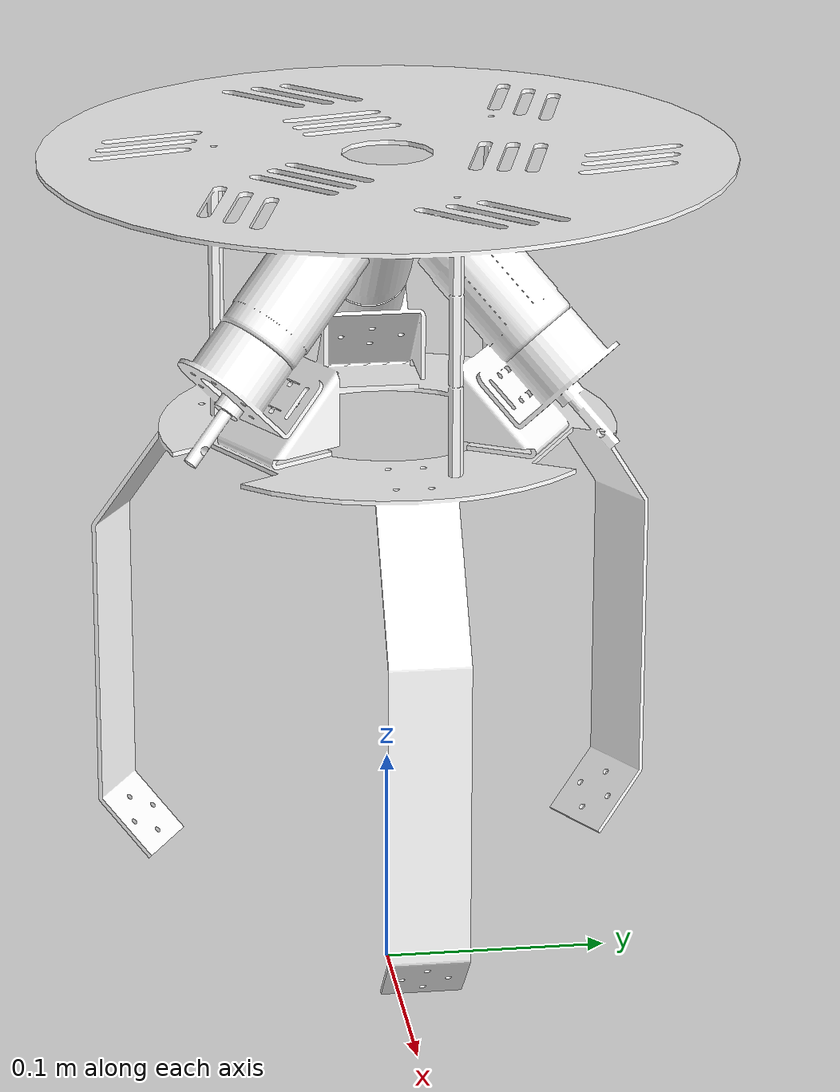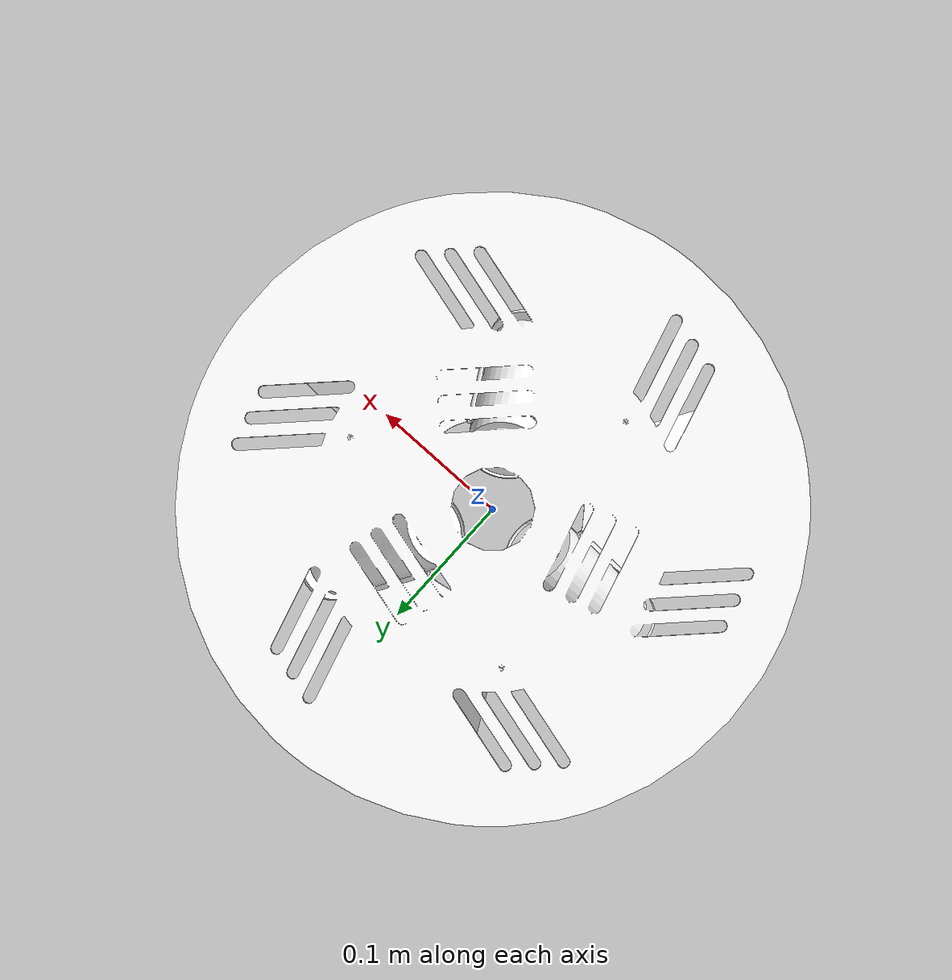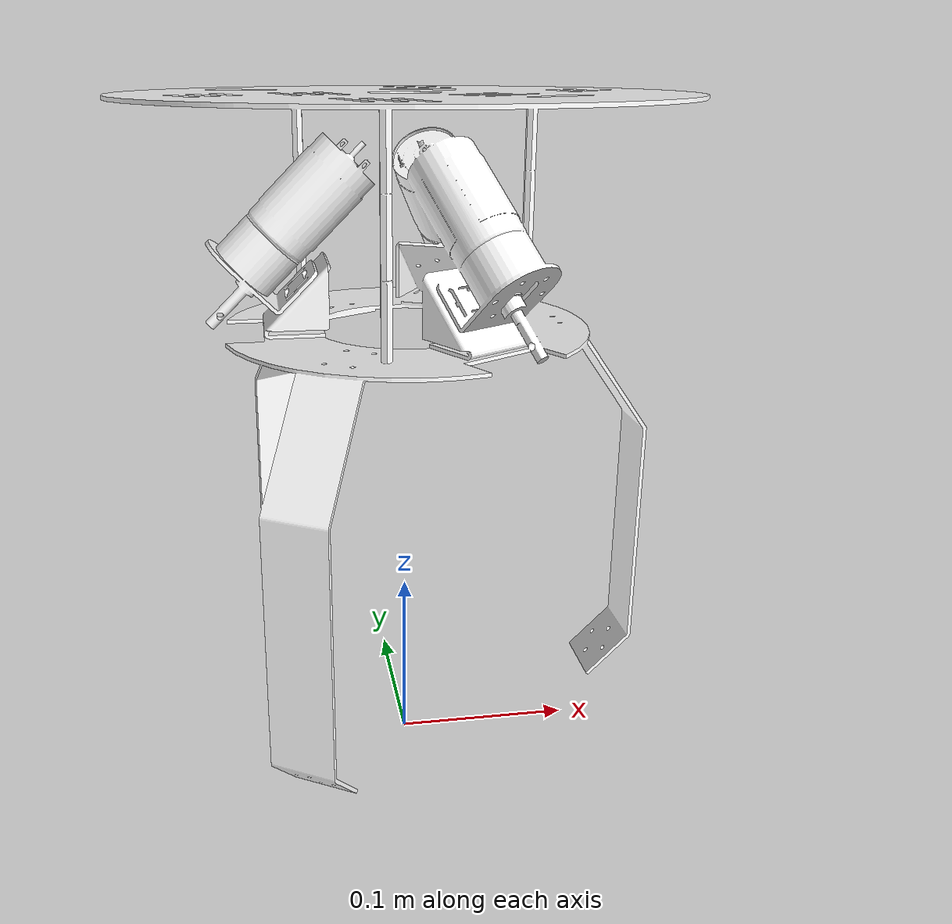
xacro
<?xml version="1.0"?>
<robot xmlns:xacro="http://www.ros.org/wiki/xacro" name="samr">

    <xacro:property name="PI" value="3.1415926535897931"/>

    <xacro:property name="chassis_radius" value="0.085"/>
    <xacro:property name="wheel_thickness" value="0.01905" />
    <xacro:property name="motor_shaft_length" value="0.005475"/>

    <xacro:include filename="materials.urdf.xacro"/>
    <xacro:include filename="wheel.urdf.xacro"/>
    <xacro:include filename="ros2_control.xacro"/>

    <link name="base_footprint"/>

    <joint name="base_joint" type="fixed">
        <parent link="base_footprint"/>
        <child link="base_link"/>
        <origin xyz="0 0 0.37985" rpy="0 0 0"/>
    </joint>

    <link name="base_link">
        <visual>
            <origin xyz="0 0 0.0" rpy="0 0 ${PI/6}"/>
            <geometry>
                <mesh filename="file://$(find sAMR_description)/meshes/baselink.stl" scale="0.001 0.001 0.001"/>
            </geometry>
            <material name="white"/>
        </visual>
        <collision>
            <origin xyz="0 0 0" rpy="0 0 ${PI/6}"/>
            <geometry>
                <mesh filename="file://$(find sAMR_description)//meshes/baselink.stl" scale="0.001 0.001 0.001"/>
            </geometry>
        </collision>
        <inertial>
            <origin xyz="-0.0058 -0.0034 -0.08134" rpy="0.0 0.0 0.0"/>
            <mass value="2.428"/>
            <inertia ixx="0.04625" ixy="0.000085" ixz="0.000287" iyy="0.04634" iyz="0.000166" izz="0.02341"/>
        </inertial>
    </link>
    </robot>

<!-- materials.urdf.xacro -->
<robot xmlns:xacro="http://www.ros.org/wiki/xacro" name="samr">
  <!-- Green material -->
  <material name="green">
    <color rgba="0.0 0.8 0.0 1.0"/>
  </material>

  <!-- Black material -->
  <material name="black">
    <color rgba="0.0 0.0 0.0 1.0"/>
  </material>

  <!-- Grey material -->
  <material name="grey">
    <color rgba="0.2 0.2 0.2 1.0"/>
  </material>

  <!-- Red material -->
  <material name="red">
    <color rgba="1.0 0.0 0.0 1.0"/>
  </material>

  <!-- Blue material -->
  <material name="blue">
    <color rgba="0.0 0.0 1.0 1.0"/>
  </material>

  <!-- Yellow material -->
  <material name="yellow">
    <color rgba="1.0 1.0 0.0 1.0"/>
  </material>

  <!-- White material -->
  <material name="white">
    <color rgba="1.0 1.0 1.0 1.0"/>
  </material>

  <!-- Orange material -->
  <material name="orange">
    <color rgba="1.0 0.647 0.0 1.0"/>
  </material>

  <!-- Purple material -->
  <material name="purple">
    <color rgba="0.5 0.0 0.5 1.0"/>
  </material>

  <!-- Cyan material -->
  <material name="cyan">
    <color rgba="0.0 1.0 1.0 1.0"/>
  </material>

  <!-- Magenta material -->
  <material name="magenta">
    <color rgba="1.0 0.0 1.0 1.0"/>
  </material>

  <!-- Pink material -->
  <material name="pink">
    <color rgba="1.0 0.75 0.8 1.0"/>
  </material>

  <!-- Brown material -->
  <material name="brown">
    <color rgba="0.6 0.3 0.0 1.0"/>
  </material>

</robot>
